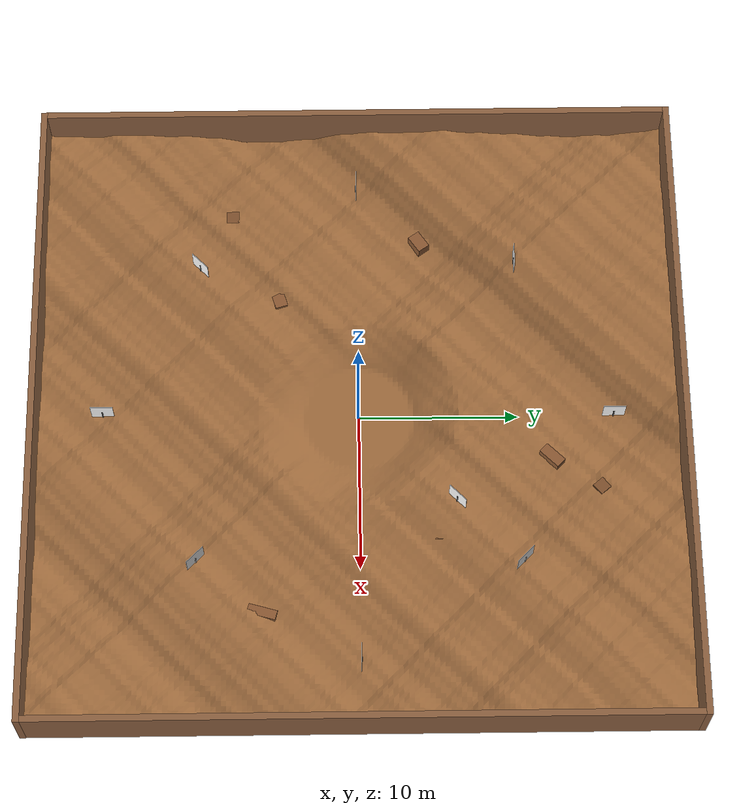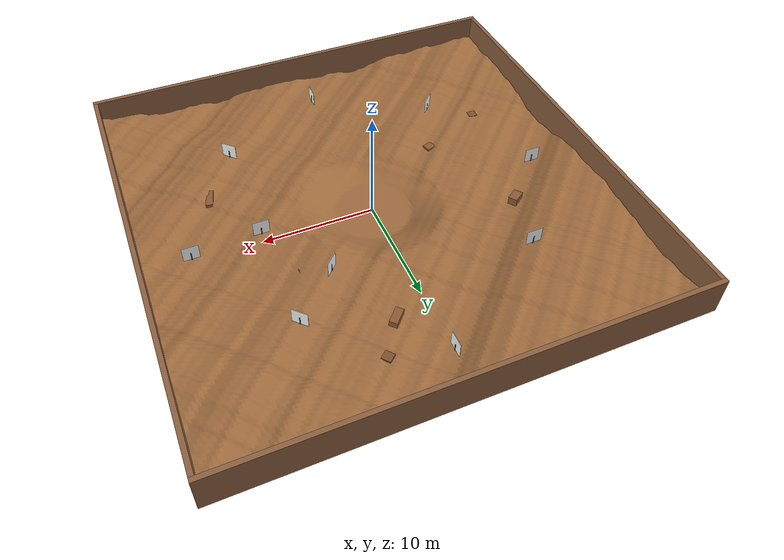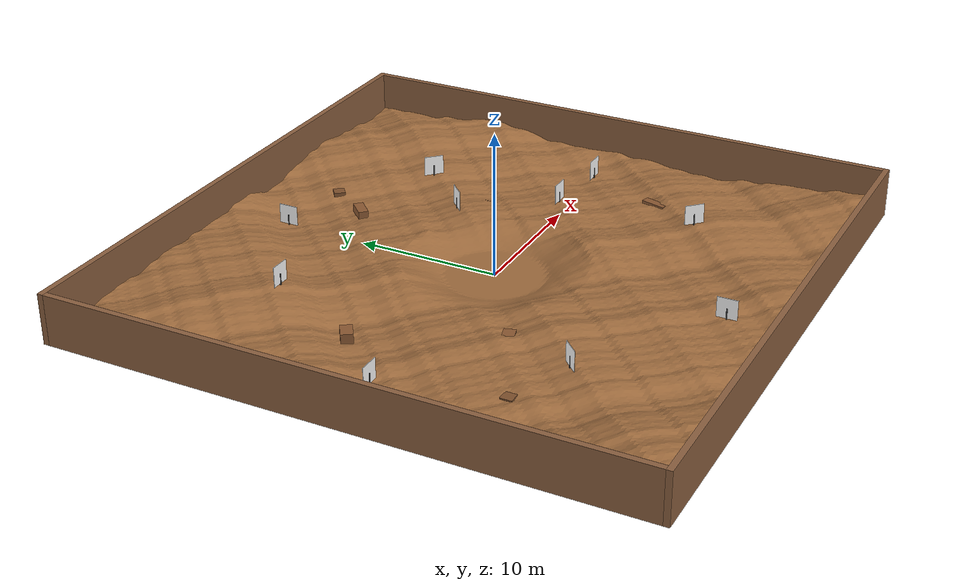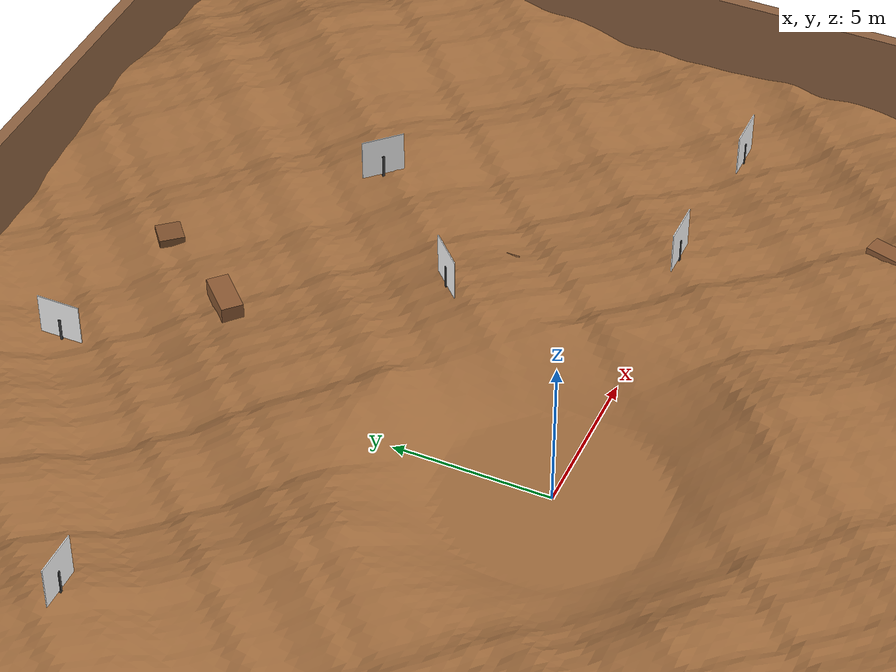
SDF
<?xml version="1.0" ?>
<sdf version="1.9">
  <world name="mars_terrain">

    <!-- ── PHYSICS ─────────────────────────────────────────────────── -->
    <physics name="default_physics" type="ode">
      <max_step_size>0.001</max_step_size>
      <real_time_factor>1</real_time_factor>
      <real_time_update_rate>1000</real_time_update_rate>
      <ode>
        <solver>
          <type>quick</type>
          <iters>300</iters>  <!-- more iterations → better force resolution on steep slopes -->
          <sor>1.4</sor>
        </solver>
        <constraints>
          <cfm>0.0</cfm>         <!-- zero CFM = hard constraints, max force transfer -->
          <erp>0.6</erp>         <!-- high ERP = physics engine pushes hard to meet velocity target -->
          <contact_max_correcting_vel>200</contact_max_correcting_vel>
          <contact_surface_layer>0.005</contact_surface_layer>  <!-- matches wheel minDepth -->
        </constraints>
      </ode>
    </physics>

    <!-- ── PLUGINS ─────────────────────────────────────────────────── -->
    <plugin filename="libgz-sim-physics-system.so"
            name="gz::sim::systems::Physics"/>
    <plugin filename="libgz-sim-user-commands-system.so"
            name="gz::sim::systems::UserCommands"/>
    <plugin filename="libgz-sim-scene-broadcaster-system.so"
            name="gz::sim::systems::SceneBroadcaster"/>
    <!-- Sensors plugin: ogre2 + headless-rendering uses EGL off-screen
         rendering on WSL2 (no /dev/dri needed). Camera and lidar both work. -->
    <plugin filename="libgz-sim-sensors-system.so"
            name="gz::sim::systems::Sensors">
      <render_engine>ogre2</render_engine>
    </plugin>
    <plugin filename="libgz-sim-imu-system.so"
            name="gz::sim::systems::Imu"/>
    <plugin filename="libgz-sim-contact-system.so"
            name="gz::sim::systems::Contact"/>

    <!-- ── SCENE / LIGHTING ────────────────────────────────────────── -->
    <scene>
      <ambient>0.3 0.2 0.1 1</ambient>
      <background>0.55 0.35 0.18 1</background>  <!-- Mars sky colour -->
      <!-- Shadows disabled on WSL2: shadow-map shader permutations add ~30s to
           OGRE2 render-thread init with Mesa llvmpipe, blocking lidar. -->
      <shadows>false</shadows>
    </scene>

    <light name="sun" type="directional">
      <cast_shadows>true</cast_shadows>
      <pose>0 0 500 0.1 0.1 0</pose>
      <diffuse>0.9 0.75 0.55 1</diffuse>  <!-- warm Mars sunlight -->
      <specular>0.3 0.3 0.3 1</specular>
      <attenuation>
        <range>1000</range>
        <constant>0.9</constant>
        <linear>0.01</linear>
        <quadratic>0.001</quadratic>
      </attenuation>
      <direction>-0.5 0.1 -0.9</direction>
    </light>

    <model name="mars_terrain">
      <static>true</static>
      <link name="link">
        <collision name="terrain_collision">
          <geometry>
            <mesh>
              <uri>file:///home/p0531d0n/mars_rover_ws/src/mars_rover_gazebo/models/rough_terrain/meshes/fractal_terrain.stl</uri>
              <scale>1 1 1</scale>
            </mesh>
          </geometry>
          <surface>
            <friction>
              <ode><mu>3.0</mu><mu2>3.0</mu2></ode>
            </friction>
            <contact>
              <ode><kp>2000000.0</kp><kd>200.0</kd></ode>
            </contact>
          </surface>
        </collision>
        <visual name="terrain_visual">
          <geometry>
            <mesh>
              <uri>file:///home/p0531d0n/mars_rover_ws/src/mars_rover_gazebo/models/rough_terrain/meshes/fractal_terrain.stl</uri>
              <scale>1 1 1</scale>
            </mesh>
          </geometry>
          <material>
            <ambient>0.58 0.38 0.22 1</ambient>
            <diffuse>0.62 0.42 0.24 1</diffuse>
            <specular>0.05 0.04 0.03 1</specular>
          </material>
        </visual>
      </link>
    </model>

    <model name="wall_north">
      <static>true</static><pose>0 20.2 1.75 0 0 0</pose>
      <link name="link">
        <collision name="c"><geometry><box><size>40.8 0.4 3.5</size></box></geometry></collision>
        <visual name="v"><geometry><box><size>40.8 0.4 3.5</size></box></geometry>
          <material><ambient>0.55 0.38 0.25 1</ambient><diffuse>0.55 0.38 0.25 1</diffuse></material></visual>
        <inertial><mass>500</mass><inertia><ixx>200</ixx><iyy>200</iyy><izz>200</izz></inertia></inertial>
      </link>
    </model>
    <model name="wall_south">
      <static>true</static><pose>0 -20.2 1.75 0 0 0</pose>
      <link name="link">
        <collision name="c"><geometry><box><size>40.8 0.4 3.5</size></box></geometry></collision>
        <visual name="v"><geometry><box><size>40.8 0.4 3.5</size></box></geometry>
          <material><ambient>0.55 0.38 0.25 1</ambient><diffuse>0.55 0.38 0.25 1</diffuse></material></visual>
        <inertial><mass>500</mass><inertia><ixx>200</ixx><iyy>200</iyy><izz>200</izz></inertia></inertial>
      </link>
    </model>
    <model name="wall_east">
      <static>true</static><pose>20.2 0 1.75 0 0 0</pose>
      <link name="link">
        <collision name="c"><geometry><box><size>0.4 40.0 3.5</size></box></geometry></collision>
        <visual name="v"><geometry><box><size>0.4 40.0 3.5</size></box></geometry>
          <material><ambient>0.55 0.38 0.25 1</ambient><diffuse>0.55 0.38 0.25 1</diffuse></material></visual>
        <inertial><mass>500</mass><inertia><ixx>200</ixx><iyy>200</iyy><izz>200</izz></inertia></inertial>
      </link>
    </model>
    <model name="wall_west">
      <static>true</static><pose>-20.2 0 1.75 0 0 0</pose>
      <link name="link">
        <collision name="c"><geometry><box><size>0.4 40.0 3.5</size></box></geometry></collision>
        <visual name="v"><geometry><box><size>0.4 40.0 3.5</size></box></geometry>
          <material><ambient>0.55 0.38 0.25 1</ambient><diffuse>0.55 0.38 0.25 1</diffuse></material></visual>
        <inertial><mass>500</mass><inertia><ixx>200</ixx><iyy>200</iyy><izz>200</izz></inertia></inertial>
      </link>
    </model>

    <model name="aruco_wp0">
      <static>true</static>
      <pose>10.0 0.0 1.024 0 0 3.14159</pose>  <!-- faces -X direction = rover approaching from origin -->
      <link name="stake">
        <visual name="v"><geometry><box><size>0.08 0.08 0.8</size></box></geometry>
          <material><ambient>0.25 0.25 0.25 1</ambient><diffuse>0.25 0.25 0.25 1</diffuse></material></visual>
        <collision name="c"><geometry><box><size>0.08 0.08 0.8</size></box></geometry></collision>
        <pose>0 0 0.4 0 0 0</pose>
        <inertial><mass>0.8</mass><inertia><ixx>0.05</ixx><iyy>0.05</iyy><izz>0.001</izz></inertia></inertial>
      </link>
      <link name="board">
        <pose>0 0 0.80 0 0 0</pose>
        <visual name="v">
          <geometry><box><size>1.4 0.03 1.4</size></box></geometry>
          <material>
            <diffuse>1 1 1 1</diffuse>
            <specular>0.1 0.1 0.1 1</specular>
            <pbr><metal><albedo_map>file:///home/p0531d0n/mars_rover_ws/src/mars_rover_gazebo/models/aruco_marker/marker_0.png</albedo_map></metal></pbr>
          </material>
        </visual>
        <inertial><mass>0.2</mass><inertia><ixx>0.01</ixx><iyy>0.01</iyy><izz>0.01</izz></inertia></inertial>
      </link>
      <joint name="stake_board" type="fixed"><parent>stake</parent><child>board</child></joint>
    </model>
    <model name="aruco_wp1">
      <static>true</static>
      <pose>10.0 10.0 0.995 0 0 2.356</pose>  <!-- faces SW -->
      <link name="stake">
        <visual name="v"><geometry><box><size>0.08 0.08 0.8</size></box></geometry>
          <material><ambient>0.25 0.25 0.25 1</ambient><diffuse>0.25 0.25 0.25 1</diffuse></material></visual>
        <collision name="c"><geometry><box><size>0.08 0.08 0.8</size></box></geometry></collision>
        <pose>0 0 0.4 0 0 0</pose>
        <inertial><mass>0.8</mass><inertia><ixx>0.05</ixx><iyy>0.05</iyy><izz>0.001</izz></inertia></inertial>
      </link>
      <link name="board">
        <pose>0 0 0.80 0 0 0</pose>
        <visual name="v">
          <geometry><box><size>1.4 0.03 1.4</size></box></geometry>
          <material>
            <diffuse>1 1 1 1</diffuse>
            <specular>0.1 0.1 0.1 1</specular>
            <pbr><metal><albedo_map>file:///home/p0531d0n/mars_rover_ws/src/mars_rover_gazebo/models/aruco_marker/marker_1.png</albedo_map></metal></pbr>
          </material>
        </visual>
        <inertial><mass>0.2</mass><inertia><ixx>0.01</ixx><iyy>0.01</iyy><izz>0.01</izz></inertia></inertial>
      </link>
      <joint name="stake_board" type="fixed"><parent>stake</parent><child>board</child></joint>
    </model>
    <model name="aruco_wp2">
      <static>true</static>
      <pose>0.0 16.0 0.069 0 0 4.71239</pose>  <!-- faces -Y = South -->
      <link name="stake">
        <visual name="v"><geometry><box><size>0.08 0.08 0.8</size></box></geometry>
          <material><ambient>0.25 0.25 0.25 1</ambient><diffuse>0.25 0.25 0.25 1</diffuse></material></visual>
        <collision name="c"><geometry><box><size>0.08 0.08 0.8</size></box></geometry></collision>
        <pose>0 0 0.4 0 0 0</pose>
        <inertial><mass>0.8</mass><inertia><ixx>0.05</ixx><iyy>0.05</iyy><izz>0.001</izz></inertia></inertial>
      </link>
      <link name="board">
        <pose>0 0 0.80 0 0 0</pose>
        <visual name="v">
          <geometry><box><size>1.4 0.03 1.4</size></box></geometry>
          <material>
            <diffuse>1 1 1 1</diffuse>
            <specular>0.1 0.1 0.1 1</specular>
            <pbr><metal><albedo_map>file:///home/p0531d0n/mars_rover_ws/src/mars_rover_gazebo/models/aruco_marker/marker_2.png</albedo_map></metal></pbr>
          </material>
        </visual>
        <inertial><mass>0.2</mass><inertia><ixx>0.01</ixx><iyy>0.01</iyy><izz>0.01</izz></inertia></inertial>
      </link>
      <joint name="stake_board" type="fixed"><parent>stake</parent><child>board</child></joint>
    </model>
    <model name="aruco_wp3">
      <static>true</static>
      <pose>-10.0 10.0 1.645 0 0 0.0</pose>  <!-- faces +X = East -->
      <link name="stake">
        <visual name="v"><geometry><box><size>0.08 0.08 0.8</size></box></geometry>
          <material><ambient>0.25 0.25 0.25 1</ambient><diffuse>0.25 0.25 0.25 1</diffuse></material></visual>
        <collision name="c"><geometry><box><size>0.08 0.08 0.8</size></box></geometry></collision>
        <pose>0 0 0.4 0 0 0</pose>
        <inertial><mass>0.8</mass><inertia><ixx>0.05</ixx><iyy>0.05</iyy><izz>0.001</izz></inertia></inertial>
      </link>
      <link name="board">
        <pose>0 0 0.80 0 0 0</pose>
        <visual name="v">
          <geometry><box><size>1.4 0.03 1.4</size></box></geometry>
          <material>
            <diffuse>1 1 1 1</diffuse>
            <specular>0.1 0.1 0.1 1</specular>
            <pbr><metal><albedo_map>file:///home/p0531d0n/mars_rover_ws/src/mars_rover_gazebo/models/aruco_marker/marker_3.png</albedo_map></metal></pbr>
          </material>
        </visual>
        <inertial><mass>0.2</mass><inertia><ixx>0.01</ixx><iyy>0.01</iyy><izz>0.01</izz></inertia></inertial>
      </link>
      <joint name="stake_board" type="fixed"><parent>stake</parent><child>board</child></joint>
    </model>
    <model name="aruco_wp4">
      <static>true</static>
      <pose>-10.0 -10.0 1.052 0 0 0.785</pose>  <!-- faces NE -->
      <link name="stake">
        <visual name="v"><geometry><box><size>0.08 0.08 0.8</size></box></geometry>
          <material><ambient>0.25 0.25 0.25 1</ambient><diffuse>0.25 0.25 0.25 1</diffuse></material></visual>
        <collision name="c"><geometry><box><size>0.08 0.08 0.8</size></box></geometry></collision>
        <pose>0 0 0.4 0 0 0</pose>
        <inertial><mass>0.8</mass><inertia><ixx>0.05</ixx><iyy>0.05</iyy><izz>0.001</izz></inertia></inertial>
      </link>
      <link name="board">
        <pose>0 0 0.80 0 0 0</pose>
        <visual name="v">
          <geometry><box><size>1.4 0.03 1.4</size></box></geometry>
          <material>
            <diffuse>1 1 1 1</diffuse>
            <specular>0.1 0.1 0.1 1</specular>
            <pbr><metal><albedo_map>file:///home/p0531d0n/mars_rover_ws/src/mars_rover_gazebo/models/aruco_marker/marker_4.png</albedo_map></metal></pbr>
          </material>
        </visual>
        <inertial><mass>0.2</mass><inertia><ixx>0.01</ixx><iyy>0.01</iyy><izz>0.01</izz></inertia></inertial>
      </link>
      <joint name="stake_board" type="fixed"><parent>stake</parent><child>board</child></joint>
    </model>
    <model name="aruco_wp5">
      <static>true</static>
      <pose>10.0 -10.0 1.482 0 0 2.356</pose>  <!-- faces NW (toward origin from SE) -->
      <link name="stake">
        <visual name="v"><geometry><box><size>0.08 0.08 0.8</size></box></geometry>
          <material><ambient>0.25 0.25 0.25 1</ambient><diffuse>0.25 0.25 0.25 1</diffuse></material></visual>
        <collision name="c"><geometry><box><size>0.08 0.08 0.8</size></box></geometry></collision>
        <pose>0 0 0.4 0 0 0</pose>
        <inertial><mass>0.8</mass><inertia><ixx>0.05</ixx><iyy>0.05</iyy><izz>0.001</izz></inertia></inertial>
      </link>
      <link name="board">
        <pose>0 0 0.80 0 0 0</pose>
        <visual name="v">
          <geometry><box><size>1.4 0.03 1.4</size></box></geometry>
          <material>
            <diffuse>1 1 1 1</diffuse>
            <specular>0.1 0.1 0.1 1</specular>
            <pbr><metal><albedo_map>file:///home/p0531d0n/mars_rover_ws/src/mars_rover_gazebo/models/aruco_marker/marker_5.png</albedo_map></metal></pbr>
          </material>
        </visual>
        <inertial><mass>0.2</mass><inertia><ixx>0.01</ixx><iyy>0.01</iyy><izz>0.01</izz></inertia></inertial>
      </link>
      <joint name="stake_board" type="fixed"><parent>stake</parent><child>board</child></joint>
    </model>
    <model name="aruco_wp6">
      <static>true</static>
      <pose>0.0 -16.0 0.733 0 0 1.5708</pose>  <!-- faces +Y (North, toward origin) -->
      <link name="stake">
        <visual name="v"><geometry><box><size>0.08 0.08 0.8</size></box></geometry>
          <material><ambient>0.25 0.25 0.25 1</ambient><diffuse>0.25 0.25 0.25 1</diffuse></material></visual>
        <collision name="c"><geometry><box><size>0.08 0.08 0.8</size></box></geometry></collision>
        <pose>0 0 0.4 0 0 0</pose>
        <inertial><mass>0.8</mass><inertia><ixx>0.05</ixx><iyy>0.05</iyy><izz>0.001</izz></inertia></inertial>
      </link>
      <link name="board">
        <pose>0 0 0.80 0 0 0</pose>
        <visual name="v">
          <geometry><box><size>1.4 0.03 1.4</size></box></geometry>
          <material>
            <diffuse>1 1 1 1</diffuse>
            <specular>0.1 0.1 0.1 1</specular>
            <pbr><metal><albedo_map>file:///home/p0531d0n/mars_rover_ws/src/mars_rover_gazebo/models/aruco_marker/marker_6.png</albedo_map></metal></pbr>
          </material>
        </visual>
        <inertial><mass>0.2</mass><inertia><ixx>0.01</ixx><iyy>0.01</iyy><izz>0.01</izz></inertia></inertial>
      </link>
      <joint name="stake_board" type="fixed"><parent>stake</parent><child>board</child></joint>
    </model>
    <model name="aruco_wp7">
      <static>true</static>
      <pose>16.0 0.0 0.407 0 0 3.14159</pose>  <!-- faces -X (West, toward origin) -->
      <link name="stake">
        <visual name="v"><geometry><box><size>0.08 0.08 0.8</size></box></geometry>
          <material><ambient>0.25 0.25 0.25 1</ambient><diffuse>0.25 0.25 0.25 1</diffuse></material></visual>
        <collision name="c"><geometry><box><size>0.08 0.08 0.8</size></box></geometry></collision>
        <pose>0 0 0.4 0 0 0</pose>
        <inertial><mass>0.8</mass><inertia><ixx>0.05</ixx><iyy>0.05</iyy><izz>0.001</izz></inertia></inertial>
      </link>
      <link name="board">
        <pose>0 0 0.80 0 0 0</pose>
        <visual name="v">
          <geometry><box><size>1.4 0.03 1.4</size></box></geometry>
          <material>
            <diffuse>1 1 1 1</diffuse>
            <specular>0.1 0.1 0.1 1</specular>
            <pbr><metal><albedo_map>file:///home/p0531d0n/mars_rover_ws/src/mars_rover_gazebo/models/aruco_marker/marker_7.png</albedo_map></metal></pbr>
          </material>
        </visual>
        <inertial><mass>0.2</mass><inertia><ixx>0.01</ixx><iyy>0.01</iyy><izz>0.01</izz></inertia></inertial>
      </link>
      <joint name="stake_board" type="fixed"><parent>stake</parent><child>board</child></joint>
    </model>
    <model name="aruco_wp8">
      <static>true</static>
      <pose>-16.0 0.0 0.400 0 0 0.0</pose>  <!-- faces +X (East, toward origin) -->
      <link name="stake">
        <visual name="v"><geometry><box><size>0.08 0.08 0.8</size></box></geometry>
          <material><ambient>0.25 0.25 0.25 1</ambient><diffuse>0.25 0.25 0.25 1</diffuse></material></visual>
        <collision name="c"><geometry><box><size>0.08 0.08 0.8</size></box></geometry></collision>
        <pose>0 0 0.4 0 0 0</pose>
        <inertial><mass>0.8</mass><inertia><ixx>0.05</ixx><iyy>0.05</iyy><izz>0.001</izz></inertia></inertial>
      </link>
      <link name="board">
        <pose>0 0 0.80 0 0 0</pose>
        <visual name="v">
          <geometry><box><size>1.4 0.03 1.4</size></box></geometry>
          <material>
            <diffuse>1 1 1 1</diffuse>
            <specular>0.1 0.1 0.1 1</specular>
            <pbr><metal><albedo_map>file:///home/p0531d0n/mars_rover_ws/src/mars_rover_gazebo/models/aruco_marker/marker_8.png</albedo_map></metal></pbr>
          </material>
        </visual>
        <inertial><mass>0.2</mass><inertia><ixx>0.01</ixx><iyy>0.01</iyy><izz>0.01</izz></inertia></inertial>
      </link>
      <joint name="stake_board" type="fixed"><parent>stake</parent><child>board</child></joint>
    </model>
    <model name="aruco_wp9">
      <static>true</static>
      <pose>6.0 6.0 0.987 0 0 3.927</pose>  <!-- faces SW (toward origin) -->
      <link name="stake">
        <visual name="v"><geometry><box><size>0.08 0.08 0.8</size></box></geometry>
          <material><ambient>0.25 0.25 0.25 1</ambient><diffuse>0.25 0.25 0.25 1</diffuse></material></visual>
        <collision name="c"><geometry><box><size>0.08 0.08 0.8</size></box></geometry></collision>
        <pose>0 0 0.4 0 0 0</pose>
        <inertial><mass>0.8</mass><inertia><ixx>0.05</ixx><iyy>0.05</iyy><izz>0.001</izz></inertia></inertial>
      </link>
      <link name="board">
        <pose>0 0 0.80 0 0 0</pose>
        <visual name="v">
          <geometry><box><size>1.4 0.03 1.4</size></box></geometry>
          <material>
            <diffuse>1 1 1 1</diffuse>
            <specular>0.1 0.1 0.1 1</specular>
            <pbr><metal><albedo_map>file:///home/p0531d0n/mars_rover_ws/src/mars_rover_gazebo/models/aruco_marker/marker_9.png</albedo_map></metal></pbr>
          </material>
        </visual>
        <inertial><mass>0.2</mass><inertia><ixx>0.01</ixx><iyy>0.01</iyy><izz>0.01</izz></inertia></inertial>
      </link>
      <joint name="stake_board" type="fixed"><parent>stake</parent><child>board</child></joint>
    </model>

    <model name="cuboid_obs_1">
      <static>true</static><pose>5.0 -4.0 0.5 0 0 0.4</pose>
      <link name="link">
        <collision name="c"><geometry><box><size>1.2 0.8 1.0</size></box></geometry></collision>
        <visual name="v"><geometry><box><size>1.2 0.8 1.0</size></box></geometry>
          <material><ambient>0.50 0.32 0.18 1</ambient><diffuse>0.55 0.35 0.20 1</diffuse></material></visual>
      </link>
    </model>
    <model name="cuboid_obs_2">
      <static>true</static><pose>-4.0 5.0 0.5 0 0 1.1</pose>
      <link name="link">
        <collision name="c"><geometry><box><size>1.2 0.8 1.0</size></box></geometry></collision>
        <visual name="v"><geometry><box><size>1.2 0.8 1.0</size></box></geometry>
          <material><ambient>0.50 0.32 0.18 1</ambient><diffuse>0.55 0.35 0.20 1</diffuse></material></visual>
      </link>
    </model>
    <model name="cuboid_obs_3">
      <static>true</static><pose>3.0 12.0 0.5 0 0 0.8</pose>
      <link name="link">
        <collision name="c"><geometry><box><size>1.5 0.7 1.0</size></box></geometry></collision>
        <visual name="v"><geometry><box><size>1.5 0.7 1.0</size></box></geometry>
          <material><ambient>0.50 0.32 0.18 1</ambient><diffuse>0.55 0.35 0.20 1</diffuse></material></visual>
      </link>
    </model>
    <model name="cuboid_obs_4">
      <static>true</static><pose>-8.0 -5.0 0.5 0 0 0.3</pose>
      <link name="link">
        <collision name="c"><geometry><box><size>1.2 0.8 1.0</size></box></geometry></collision>
        <visual name="v"><geometry><box><size>1.2 0.8 1.0</size></box></geometry>
          <material><ambient>0.50 0.32 0.18 1</ambient><diffuse>0.55 0.35 0.20 1</diffuse></material></visual>
      </link>
    </model>
    <model name="cuboid_obs_5">
      <static>true</static><pose>13.0 -6.0 0.5 0 0 1.3</pose>
      <link name="link">
        <collision name="c"><geometry><box><size>1.8 0.6 1.0</size></box></geometry></collision>
        <visual name="v"><geometry><box><size>1.8 0.6 1.0</size></box></geometry>
          <material><ambient>0.50 0.32 0.18 1</ambient><diffuse>0.55 0.35 0.20 1</diffuse></material></visual>
      </link>
    </model>
    <model name="cuboid_obs_6">
      <static>true</static><pose>-12.0 4.0 0.5 0 0 0.6</pose>
      <link name="link">
        <collision name="c"><geometry><box><size>1.2 0.8 1.0</size></box></geometry></collision>
        <visual name="v"><geometry><box><size>1.2 0.8 1.0</size></box></geometry>
          <material><ambient>0.50 0.32 0.18 1</ambient><diffuse>0.55 0.35 0.20 1</diffuse></material></visual>
      </link>
    </model>

    <model name="cube_obs_1">
      <static>true</static><pose>6.0 -8.0 0.4 0 0 0</pose>
      <link name="link">
        <collision name="c"><geometry><box><size>0.8 0.8 0.8</size></box></geometry></collision>
        <visual name="v"><geometry><box><size>0.8 0.8 0.8</size></box></geometry>
          <material><ambient>0.45 0.28 0.15 1</ambient><diffuse>0.50 0.32 0.18 1</diffuse></material></visual>
      </link>
    </model>
    <model name="cube_obs_2">
      <static>true</static><pose>-6.0 4.0 0.4 0 0 0.5</pose>
      <link name="link">
        <collision name="c"><geometry><box><size>0.8 0.8 0.8</size></box></geometry></collision>
        <visual name="v"><geometry><box><size>0.8 0.8 0.8</size></box></geometry>
          <material><ambient>0.45 0.28 0.15 1</ambient><diffuse>0.50 0.32 0.18 1</diffuse></material></visual>
      </link>
    </model>
    <model name="cube_obs_3">
      <static>true</static><pose>8.0 5.0 0.4 0 0 0</pose>
      <link name="link">
        <collision name="c"><geometry><box><size>0.8 0.8 0.8</size></box></geometry></collision>
        <visual name="v"><geometry><box><size>0.8 0.8 0.8</size></box></geometry>
          <material><ambient>0.45 0.28 0.15 1</ambient><diffuse>0.50 0.32 0.18 1</diffuse></material></visual>
      </link>
    </model>
    <model name="cube_obs_4">
      <static>true</static><pose>-3.0 -7.0 0.4 0 0 0.2</pose>
      <link name="link">
        <collision name="c"><geometry><box><size>0.8 0.8 0.8</size></box></geometry></collision>
        <visual name="v"><geometry><box><size>0.8 0.8 0.8</size></box></geometry>
          <material><ambient>0.45 0.28 0.15 1</ambient><diffuse>0.50 0.32 0.18 1</diffuse></material></visual>
      </link>
    </model>
    <model name="cube_obs_5">
      <static>true</static><pose>5.0 15.0 0.4 0 0 0.7</pose>
      <link name="link">
        <collision name="c"><geometry><box><size>0.8 0.8 0.8</size></box></geometry></collision>
        <visual name="v"><geometry><box><size>0.8 0.8 0.8</size></box></geometry>
          <material><ambient>0.45 0.28 0.15 1</ambient><diffuse>0.50 0.32 0.18 1</diffuse></material></visual>
      </link>
    </model>
    <model name="cube_obs_6">
      <static>true</static><pose>-14.0 -8.0 0.4 0 0 0</pose>
      <link name="link">
        <collision name="c"><geometry><box><size>0.8 0.8 0.8</size></box></geometry></collision>
        <visual name="v"><geometry><box><size>0.8 0.8 0.8</size></box></geometry>
          <material><ambient>0.45 0.28 0.15 1</ambient><diffuse>0.50 0.32 0.18 1</diffuse></material></visual>
      </link>
    </model>

    </world>
</sdf>
